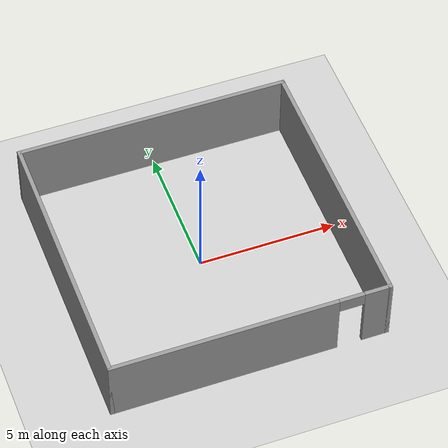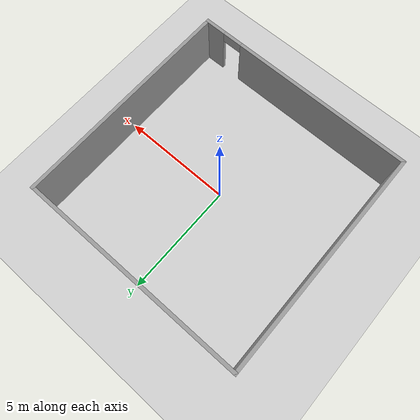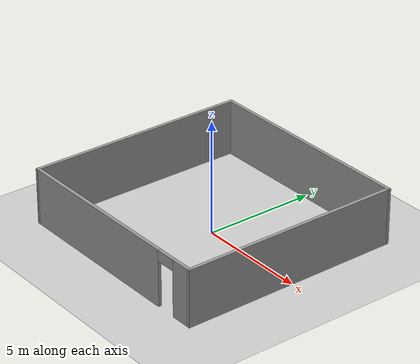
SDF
<sdf version="1.6">
 <world name="default">
  <light name="sun" type="directional">
   <pose>0 0 10 0 -0 0</pose>
   <diffuse>0.8 0.8 0.8 1</diffuse>
   <specular>0.1 0.1 0.1 1</specular>
   <attenuation>
    <range>1000</range>
    <constant>0.9</constant>
    <linear>0.01</linear>
    <quadratic>0.001</quadratic>
   </attenuation>
   <direction>-0.5 0.5 -1</direction>
  </light>
  <model name="ground_plane">
   <static>1</static>
   <link name="link">
    <collision name="collision">
     <geometry><plane><normal>0 0 1</normal><size>100 100</size></plane></geometry>
     <surface><friction><ode><mu>100</mu><mu2>50</mu2></ode></friction></surface>
    </collision>
    <visual name="visual">
     <cast_shadows>0</cast_shadows>
     <geometry><plane><normal>0 0 1</normal><size>100 100</size></plane></geometry>
     <material>
      <script><uri>file://media/materials/scripts/gazebo.material</uri><name>Gazebo/Grey</name></script>
     </material>
    </visual>
   </link>
  </model>
  <gravity>0 0 -9.8</gravity>
  <magnetic_field>6e-06 2.3e-05 -4.2e-05</magnetic_field>
  <atmosphere type="adiabatic"/>
  <physics name="default_physics" default="0" type="ode">
   <max_step_size>0.001</max_step_size>
   <real_time_factor>1</real_time_factor>
   <real_time_update_rate>0.000000</real_time_update_rate>
  </physics>
  <scene><ambient>0.4 0.4 0.4 1</ambient><background>0.7 0.7 0.7 1</background><shadows>1</shadows></scene>
  <spherical_coordinates>
   <surface_model>EARTH_WGS84</surface_model>
   <latitude_deg>0</latitude_deg>
   <longitude_deg>0</longitude_deg>
   <elevation>0</elevation>
   <heading_deg>0</heading_deg>
  </spherical_coordinates>
  <model name="squared_room">
   <pose>-0.000334 -0.002192 0 0 -0 0</pose>
   <link name="Wall_0">
    <collision name="Wall_0_Collision">
     <geometry><box><size>10 0.15 2.5</size></box></geometry>
     <pose>0 0 1.25 0 -0 0</pose>
    </collision>
    <visual name="Wall_0_Visual">
     <pose>0 0 1.25 0 -0 0</pose>
     <geometry><box><size>10 0.15 2.5</size></box></geometry>
     <material>
      <script><uri>file://media/materials/scripts/gazebo.material</uri><name>Gazebo/Grey</name></script>
      <ambient>1 1 1 1</ambient>
     </material>
     <meta><layer>0</layer></meta>
    </visual>
    <pose>-4.925 0 0 0 0 -1.5708</pose>
   </link>
   <link name="Wall_1">
    <pose>0 -4.925 0 0 -0 0</pose>
    <visual name="Wall_1_Visual_0">
     <pose>-0.950114 0 1.25 0 -0 0</pose>
     <geometry><box><size>8.09977 0.15 2.5</size></box></geometry>
     <material>
      <script><uri>file://media/materials/scripts/gazebo.material</uri><name>Gazebo/Grey</name></script>
      <ambient>1 1 1 1</ambient>
     </material>
     <meta><layer>0</layer></meta>
    </visual>
    <collision name="Wall_1_Collision_0">
     <geometry><box><size>8.09977 0.15 2.5</size></box></geometry>
     <pose>-0.950114 0 1.25 0 -0 0</pose>
    </collision>
    <visual name="Wall_1_Visual_1">
     <pose>4.49989 0 1.25 0 -0 0</pose>
     <geometry><box><size>1.00023 0.15 2.5</size></box></geometry>
     <material>
      <script><uri>file://media/materials/scripts/gazebo.material</uri><name>Gazebo/Grey</name></script>
      <ambient>1 1 1 1</ambient>
     </material>
     <meta><layer>0</layer></meta>
    </visual>
    <collision name="Wall_1_Collision_1">
     <geometry><box><size>1.00023 0.15 2.5</size></box></geometry>
     <pose>4.49989 0 1.25 0 -0 0</pose>
    </collision>
    <visual name="Wall_1_Visual_2">
     <pose>3.54977 0 2.25 0 -0 0</pose>
     <geometry><box><size>0.9 0.15 0.5</size></box></geometry>
     <material>
      <script><uri>file://media/materials/scripts/gazebo.material</uri><name>Gazebo/Grey</name></script>
      <ambient>1 1 1 1</ambient>
     </material>
     <meta><layer>0</layer></meta>
    </visual>
    <collision name="Wall_1_Collision_2">
     <geometry><box><size>0.9 0.15 0.5</size></box></geometry>
     <pose>3.54977 0 2.25 0 -0 0</pose>
    </collision>
   </link>
   <link name="Wall_2">
    <collision name="Wall_2_Collision">
     <geometry><box><size>10 0.15 2.5</size></box></geometry>
     <pose>0 0 1.25 0 -0 0</pose>
    </collision>
    <visual name="Wall_2_Visual">
     <pose>0 0 1.25 0 -0 0</pose>
     <geometry><box><size>10 0.15 2.5</size></box></geometry>
     <material>
      <script><uri>file://media/materials/scripts/gazebo.material</uri><name>Gazebo/Grey</name></script>
      <ambient>1 1 1 1</ambient>
     </material>
     <meta><layer>0</layer></meta>
    </visual>
    <pose>4.925 0 0 0 -0 1.5708</pose>
   </link>
   <link name="Wall_3">
    <collision name="Wall_3_Collision">
     <geometry><box><size>10 0.15 2.5</size></box></geometry>
     <pose>0 0 1.25 0 -0 0</pose>
    </collision>
    <visual name="Wall_3_Visual">
     <pose>0 0 1.25 0 -0 0</pose>
     <geometry><box><size>10 0.15 2.5</size></box></geometry>
     <material>
      <script><uri>file://media/materials/scripts/gazebo.material</uri><name>Gazebo/Grey</name></script>
      <ambient>1 1 1 1</ambient>
     </material>
     <meta><layer>0</layer></meta>
    </visual>
    <pose>0 4.925 0 0 -0 3.14159</pose>
   </link>
   <static>1</static>
  </model>
 </world>
</sdf>
